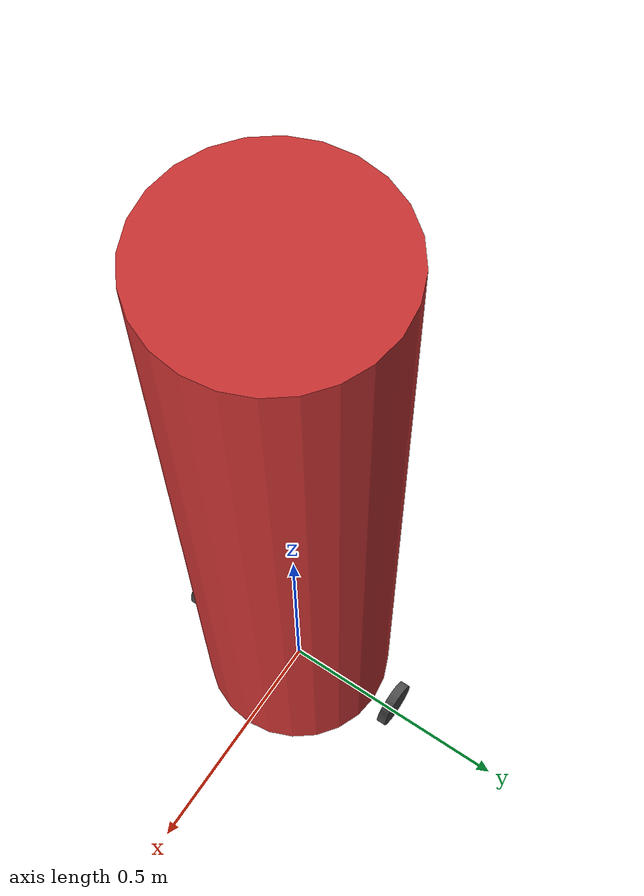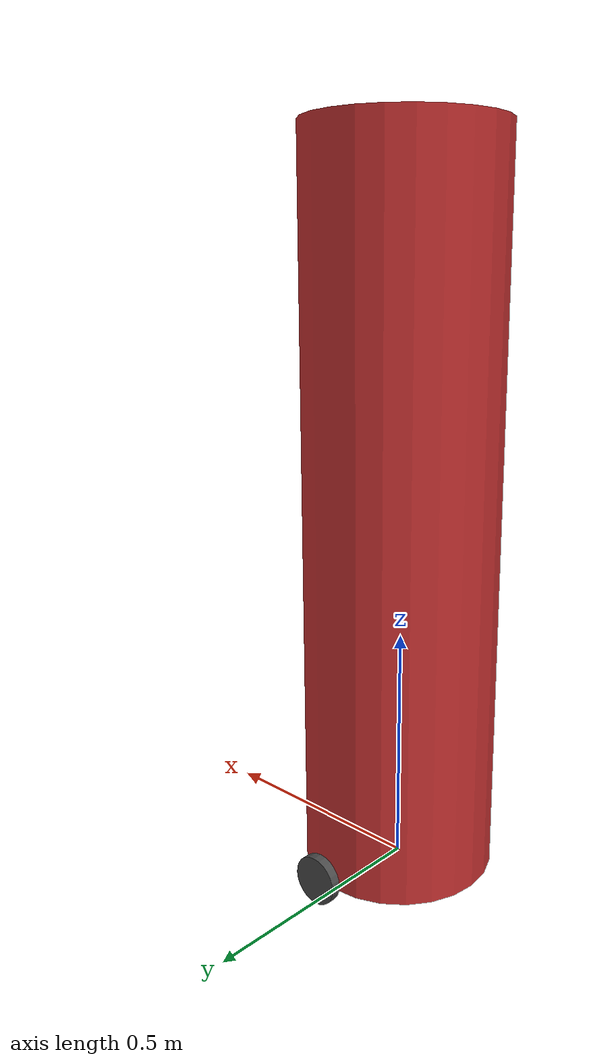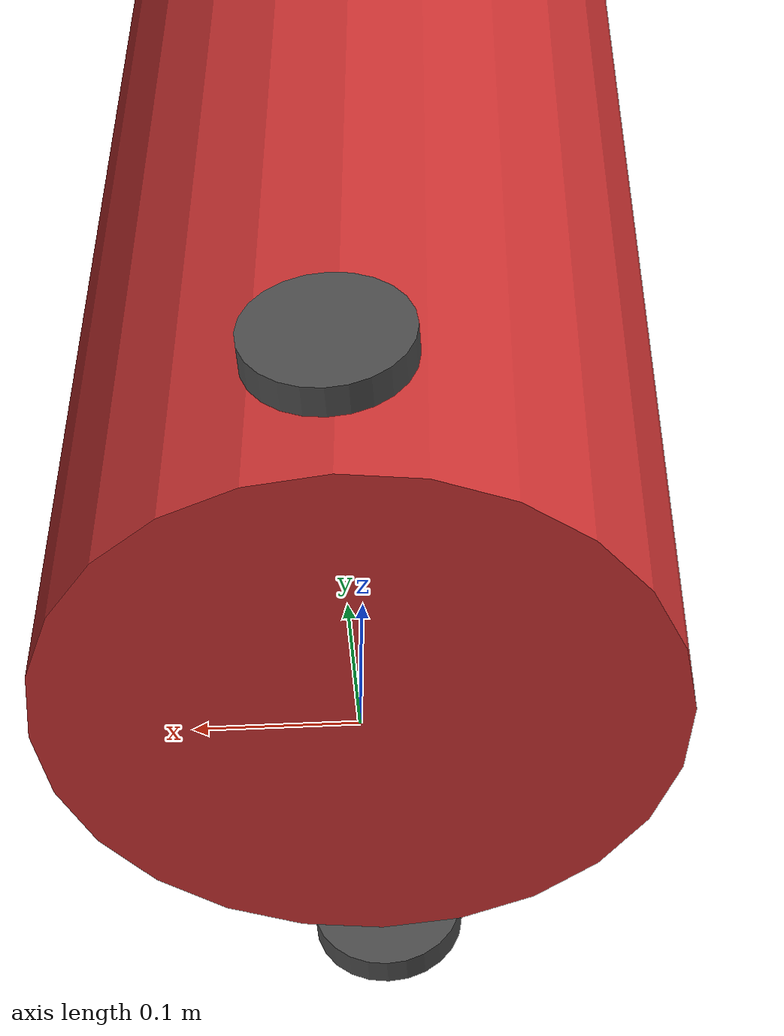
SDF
<?xml version="1.0" ?>
<sdf version="1.6">
  <model name="moving_obstacle">
    <static>false</static>

    <!-- Body (cylinder) -->
    <link name="base_link">
      <pose>0 0 0.75 0 0 0</pose>
      <inertial>
        <mass>1.0</mass>
        <inertia>
          <ixx>10.0</ixx>
          <ixy>0</ixy>
          <ixz>0</ixz>
          <iyy>10.0</iyy>
          <iyz>0</iyz>
          <izz>0.5</izz>
        </inertia>
      </inertial>
      <collision name="collision">
        <geometry>
          <cylinder>
            <radius>0.2</radius>
            <length>1.5</length>
          </cylinder>
        </geometry>
        <surface>
          <friction>
            <ode>
              <mu>0.0</mu>
              <mu2>0.0</mu2>
            </ode>
          </friction>
        </surface>
      </collision>
      <visual name="visual">
        <geometry>
          <cylinder>
            <radius>0.2</radius>
            <length>1.5</length>
          </cylinder>
        </geometry>
        <material>
          <ambient>0.8 0.2 0.2 1</ambient>
          <diffuse>0.8 0.2 0.2 1</diffuse>
          <specular>0.1 0.1 0.1 1</specular>
        </material>
      </visual>
    </link>

    <!-- Left wheel -->
    <link name="left_wheel">
      <pose>0 0.25 0.05 -1.5707 0 0</pose>
      <inertial>
        <mass>0.5</mass>
        <inertia>
          <ixx>0.001</ixx>
          <ixy>0</ixy>
          <ixz>0</ixz>
          <iyy>0.001</iyy>
          <iyz>0</iyz>
          <izz>0.001</izz>
        </inertia>
      </inertial>
      <collision name="collision">
        <geometry>
          <cylinder>
            <radius>0.05</radius>
            <length>0.02</length>
          </cylinder>
        </geometry>
        <surface>
          <friction>
            <ode>
              <mu>1.0</mu>
              <mu2>1.0</mu2>
            </ode>
          </friction>
        </surface>
      </collision>
      <visual name="visual">
        <geometry>
          <cylinder>
            <radius>0.05</radius>
            <length>0.02</length>
          </cylinder>
        </geometry>
        <material>
          <ambient>0.3 0.3 0.3 1</ambient>
          <diffuse>0.3 0.3 0.3 1</diffuse>
        </material>
      </visual>
    </link>

    <!-- Right wheel -->
    <link name="right_wheel">
      <pose>0 -0.25 0.05 -1.5707 0 0</pose>
      <inertial>
        <mass>0.5</mass>
        <inertia>
          <ixx>0.001</ixx>
          <ixy>0</ixy>
          <ixz>0</ixz>
          <iyy>0.001</iyy>
          <iyz>0</iyz>
          <izz>0.001</izz>
        </inertia>
      </inertial>
      <collision name="collision">
        <geometry>
          <cylinder>
            <radius>0.05</radius>
            <length>0.02</length>
          </cylinder>
        </geometry>
        <surface>
          <friction>
            <ode>
              <mu>1.0</mu>
              <mu2>1.0</mu2>
            </ode>
          </friction>
        </surface>
      </collision>
      <visual name="visual">
        <geometry>
          <cylinder>
            <radius>0.05</radius>
            <length>0.02</length>
          </cylinder>
        </geometry>
        <material>
          <ambient>0.3 0.3 0.3 1</ambient>
          <diffuse>0.3 0.3 0.3 1</diffuse>
        </material>
      </visual>
    </link>

    <!-- Caster (ball) for stability -->
    <link name="caster">
      <pose>-0.15 0 0.025 0 0 0</pose>
      <inertial>
        <mass>0.1</mass>
        <inertia>
          <ixx>0.0001</ixx>
          <ixy>0</ixy>
          <ixz>0</ixz>
          <iyy>0.0001</iyy>
          <iyz>0</iyz>
          <izz>0.0001</izz>
        </inertia>
      </inertial>
      <collision name="collision">
        <geometry>
          <sphere>
            <radius>0.025</radius>
          </sphere>
        </geometry>
        <surface>
          <friction>
            <ode>
              <mu>0.0</mu>
              <mu2>0.0</mu2>
            </ode>
          </friction>
        </surface>
      </collision>
      <visual name="visual">
        <geometry>
          <sphere>
            <radius>0.025</radius>
          </sphere>
        </geometry>
        <material>
          <ambient>0.3 0.3 0.3 1</ambient>
          <diffuse>0.3 0.3 0.3 1</diffuse>
        </material>
      </visual>
    </link>

    <!-- Joints -->
    <joint name="left_wheel_joint" type="revolute">
      <parent>base_link</parent>
      <child>left_wheel</child>
      <axis>
        <xyz>0 0 1</xyz>
      </axis>
    </joint>

    <joint name="right_wheel_joint" type="revolute">
      <parent>base_link</parent>
      <child>right_wheel</child>
      <axis>
        <xyz>0 0 1</xyz>
      </axis>
    </joint>

    <joint name="caster_joint" type="ball">
      <parent>base_link</parent>
      <child>caster</child>
    </joint>

    <!-- Diff drive plugin -->
    <plugin filename="gz-sim-diff-drive-system"
            name="gz::sim::systems::DiffDrive">
      <left_joint>left_wheel_joint</left_joint>
      <right_joint>right_wheel_joint</right_joint>
      <wheel_separation>0.5</wheel_separation>
      <wheel_radius>0.05</wheel_radius>
      <topic>/obstacle/cmd_vel</topic>
      <odom_publish_frequency>0</odom_publish_frequency>
    </plugin>
  </model>
</sdf>
